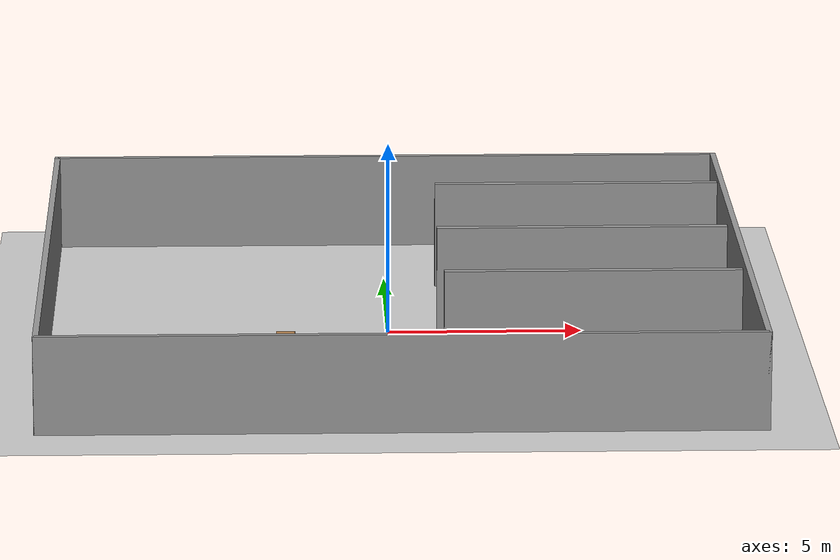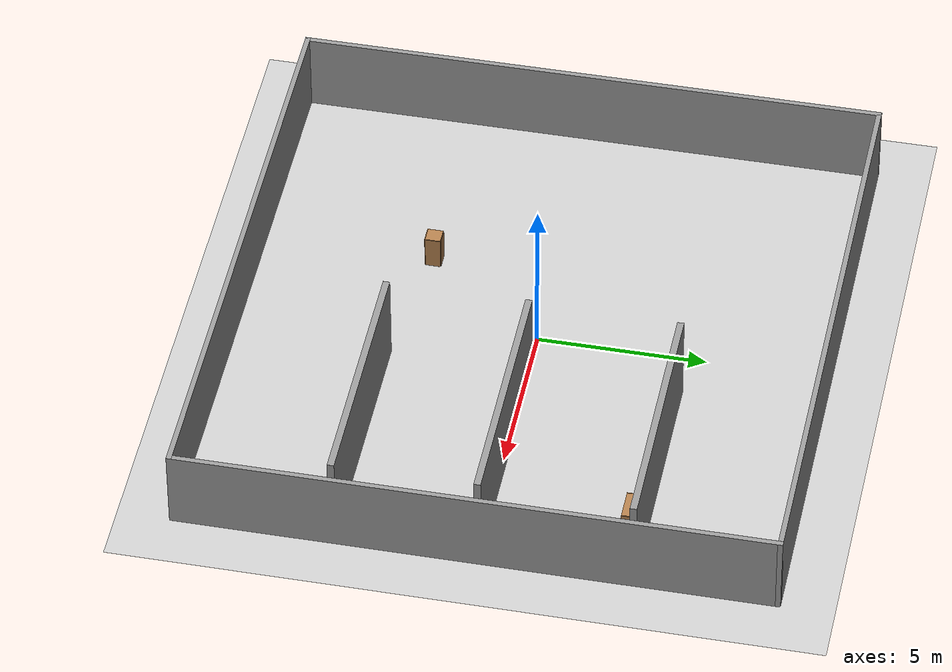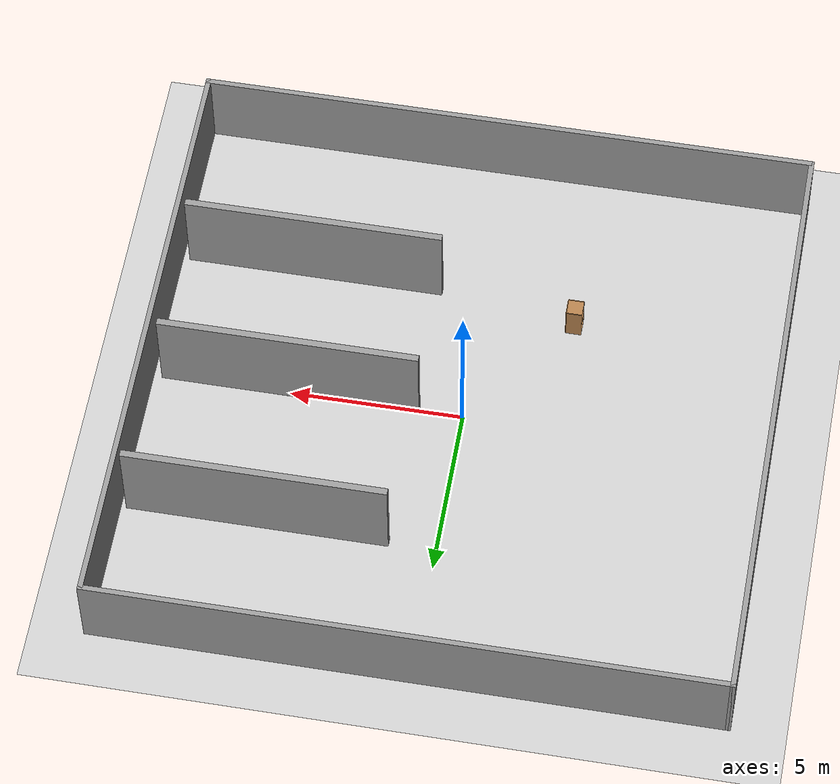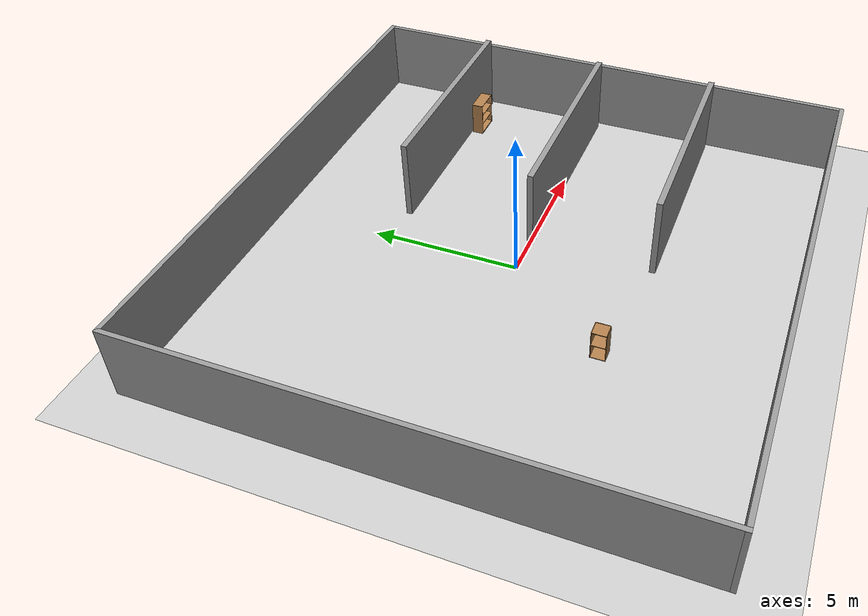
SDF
<sdf version="1.6">
 <world name="default">
  <light name="sun" type="directional">
   <pose>0 0 10 0 -0 0</pose>
   <diffuse>0.8 0.8 0.8 1</diffuse>
   <specular>0.2 0.2 0.2 1</specular>
   <attenuation>
    <range>1000</range>
    <constant>0.9</constant>
    <linear>0.01</linear>
    <quadratic>0.001</quadratic>
   </attenuation>
   <direction>-0.5 0.1 -0.9</direction>
  </light>
  <model name="ground_plane">
   <static>1</static>
   <link name="link">
    <collision name="collision">
     <geometry><plane><normal>0 0 1</normal><size>100 100</size></plane></geometry>
     <surface><friction><ode><mu>100</mu><mu2>50</mu2></ode></friction></surface>
    </collision>
    <visual name="visual">
     <cast_shadows>0</cast_shadows>
     <geometry><plane><normal>0 0 1</normal><size>100 100</size></plane></geometry>
     <material>
      <script><uri>file://media/materials/scripts/gazebo.material</uri><name>Gazebo/Grey</name></script>
     </material>
    </visual>
   </link>
  </model>
  <physics name="default_physics" default="0" type="ode">
   <max_step_size>0.01</max_step_size>
   <real_time_factor>1</real_time_factor>
   <real_time_update_rate>0</real_time_update_rate>
  </physics>
  <scene><ambient>0.4 0.4 0.4 1</ambient><background>0.7 0.7 0.7 1</background><shadows>1</shadows></scene>
  <audio><device>default</device></audio>
  <spherical_coordinates>
   <surface_model>EARTH_WGS84</surface_model>
   <latitude_deg>0</latitude_deg>
   <longitude_deg>0</longitude_deg>
   <elevation>0</elevation>
   <heading_deg>0</heading_deg>
  </spherical_coordinates>
  <model name="world-builder">
   <pose>0.14377 -0.070583 0 0 -0 0</pose>
   <link name="Wall_10">
    <collision name="Wall_10_Collision">
     <geometry><box><size>17.5 0.15 2.5</size></box></geometry>
     <pose>0 0 1.25 0 -0 0</pose>
    </collision>
    <visual name="Wall_10_Visual">
     <pose>0 0 1.25 0 -0 0</pose>
     <geometry><box><size>17.5 0.15 2.5</size></box></geometry>
     <material>
      <script><uri>file://media/materials/scripts/gazebo.material</uri><name>Gazebo/Grey</name></script>
      <ambient>1 1 1 1</ambient>
     </material>
     <meta><layer>0</layer></meta>
    </visual>
    <pose>8.925 0 0 0 -0 1.5708</pose>
   </link>
   <link name="Wall_2">
    <collision name="Wall_2_Collision">
     <geometry><box><size>17.5 0.15 2.5</size></box></geometry>
     <pose>0 0 1.25 0 -0 0</pose>
    </collision>
    <visual name="Wall_2_Visual">
     <pose>0 0 1.25 0 -0 0</pose>
     <geometry><box><size>17.5 0.15 2.5</size></box></geometry>
     <material>
      <script><uri>file://media/materials/scripts/gazebo.material</uri><name>Gazebo/Grey</name></script>
      <ambient>1 1 1 1</ambient>
     </material>
     <meta><layer>0</layer></meta>
    </visual>
    <pose>-8.925 0 0 0 -0 1.5708</pose>
   </link>
   <link name="Wall_3">
    <collision name="Wall_3_Collision">
     <geometry><box><size>18 0.15 2.5</size></box></geometry>
     <pose>0 0 1.25 0 -0 0</pose>
    </collision>
    <visual name="Wall_3_Visual">
     <pose>0 0 1.25 0 -0 0</pose>
     <geometry><box><size>18 0.15 2.5</size></box></geometry>
     <material>
      <script><uri>file://media/materials/scripts/gazebo.material</uri><name>Gazebo/Grey</name></script>
      <ambient>1 1 1 1</ambient>
     </material>
     <meta><layer>0</layer></meta>
    </visual>
    <pose>-0 8.675 0 0 -0 0</pose>
   </link>
   <link name="Wall_8">
    <collision name="Wall_8_Collision">
     <geometry><box><size>18 0.15 2.5</size></box></geometry>
     <pose>0 0 1.25 0 -0 0</pose>
    </collision>
    <visual name="Wall_8_Visual">
     <pose>0 0 1.25 0 -0 0</pose>
     <geometry><box><size>18 0.15 2.5</size></box></geometry>
     <material>
      <script><uri>file://media/materials/scripts/gazebo.material</uri><name>Gazebo/Grey</name></script>
      <ambient>1 1 1 1</ambient>
     </material>
     <meta><layer>0</layer></meta>
    </visual>
    <pose>-0 -8.675 0 0 -0 0</pose>
   </link>
   <static>1</static>
  </model>
  <gravity>0 0 -9.8</gravity>
  <magnetic_field>6e-06 2.3e-05 -4.2e-05</magnetic_field>
  <atmosphere type="adiabatic"/>
  <model name="grey_wall">
   <static>1</static>
   <link name="link">
    <pose>0 0 1.4 0 -0 0</pose>
    <collision name="collision"><geometry><box><size>7.5 0.2 2.8</size></box></geometry></collision>
    <visual name="visual">
     <cast_shadows>0</cast_shadows>
     <geometry><box><size>7.5 0.2 2.8</size></box></geometry>
     <material>
      <script>
       <uri>model://grey_wall/materials/scripts</uri>
       <uri>model://grey_wall/materials/textures</uri>
       <name>vrc/grey_wall</name>
      </script>
     </material>
    </visual>
   </link>
   <pose>5.09662 4.42858 0 0 -0 0</pose>
  </model>
  <model name="grey_wall_0">
   <static>1</static>
   <link name="link">
    <pose>0 0 1.4 0 -0 0</pose>
    <collision name="collision"><geometry><box><size>7.5 0.2 2.8</size></box></geometry></collision>
    <visual name="visual">
     <cast_shadows>0</cast_shadows>
     <geometry><box><size>7.5 0.2 2.8</size></box></geometry>
     <material>
      <script>
       <uri>model://grey_wall/materials/scripts</uri>
       <uri>model://grey_wall/materials/textures</uri>
       <name>vrc/grey_wall</name>
      </script>
     </material>
    </visual>
   </link>
   <pose>5.00675 -0.007086 0 0 -0 0</pose>
  </model>
  <model name="grey_wall_1">
   <static>1</static>
   <link name="link">
    <pose>0 0 1.4 0 -0 0</pose>
    <collision name="collision"><geometry><box><size>7.5 0.2 2.8</size></box></geometry></collision>
    <visual name="visual">
     <cast_shadows>0</cast_shadows>
     <geometry><box><size>7.5 0.2 2.8</size></box></geometry>
     <material>
      <script>
       <uri>model://grey_wall/materials/scripts</uri>
       <uri>model://grey_wall/materials/textures</uri>
       <name>vrc/grey_wall</name>
      </script>
     </material>
    </visual>
   </link>
   <pose>5.05761 -4.17103 0 0 -0 0</pose>
  </model>
  <model name="cabinet">
   <static>1</static>
   <link name="cabinet_bottom_plate">
    <inertial>
     <pose>0 0 -1 0 -0 0</pose>
     <inertia><ixx>2.05</ixx><ixy>0</ixy><ixz>0</ixz><iyy>2.05</iyy><iyz>0</iyz><izz>2.05</izz></inertia>
     <mass>25</mass>
    </inertial>
    <collision name="cabinet_bottom_plate_geom">
     <pose>0 0 0.01 0 -0 0</pose>
     <geometry><box><size>0.45 0.45 0.02</size></box></geometry>
    </collision>
    <visual name="cabinet_bottom_plate_geom_visual">
     <pose>0 0 0.01 0 -0 0</pose>
     <geometry><box><size>0.45 0.45 0.02</size></box></geometry>
     <material>
      <script><uri>file://media/materials/scripts/gazebo.material</uri><name>Gazebo/Wood</name></script>
     </material>
    </visual>
    <collision name="cabinet_bottom_plate_geom_cabinet_back_plate">
     <pose>0.235 0 0.51 0 -0 0</pose>
     <geometry><box><size>0.02 0.45 1.02</size></box></geometry>
    </collision>
    <visual name="cabinet_bottom_plate_geom_cabinet_back_plate_visual">
     <pose>0.235 0 0.51 0 -0 0</pose>
     <geometry><box><size>0.02 0.45 1.02</size></box></geometry>
     <material>
      <script><uri>file://media/materials/scripts/gazebo.material</uri><name>Gazebo/Wood</name></script>
     </material>
    </visual>
    <collision name="cabinet_bottom_plate_geom_cabinet_left_plate">
     <pose>0 0.235 0.51 0 -0 0</pose>
     <geometry><box><size>0.45 0.02 1.02</size></box></geometry>
    </collision>
    <visual name="cabinet_bottom_plate_geom_cabinet_left_plate_visual">
     <pose>0 0.235 0.51 0 -0 0</pose>
     <geometry><box><size>0.45 0.02 1.02</size></box></geometry>
     <material>
      <script><uri>file://media/materials/scripts/gazebo.material</uri><name>Gazebo/Wood</name></script>
     </material>
    </visual>
    <collision name="cabinet_bottom_plate_geom_cabinet_middle_plate">
     <pose>0 0 0.51 0 -0 0</pose>
     <geometry><box><size>0.45 0.45 0.02</size></box></geometry>
    </collision>
    <visual name="cabinet_bottom_plate_geom_cabinet_middle_plate_visual">
     <pose>0 0 0.51 0 -0 0</pose>
     <geometry><box><size>0.45 0.45 0.02</size></box></geometry>
     <material>
      <script><uri>file://media/materials/scripts/gazebo.material</uri><name>Gazebo/Wood</name></script>
     </material>
    </visual>
    <collision name="cabinet_bottom_plate_geom_cabinet_right_plate">
     <pose>0 -0.235 0.51 0 -0 0</pose>
     <geometry><box><size>0.45 0.02 1.02</size></box></geometry>
    </collision>
    <visual name="cabinet_bottom_plate_geom_cabinet_right_plate_visual">
     <pose>0 -0.235 0.51 0 -0 0</pose>
     <geometry><box><size>0.45 0.02 1.02</size></box></geometry>
     <material>
      <script><uri>file://media/materials/scripts/gazebo.material</uri><name>Gazebo/Wood</name></script>
     </material>
    </visual>
    <collision name="cabinet_bottom_plate_geom_cabinet_top_plate">
     <pose>0 0 1.01 0 -0 0</pose>
     <geometry><box><size>0.45 0.45 0.02</size></box></geometry>
    </collision>
    <visual name="cabinet_bottom_plate_geom_cabinet_top_plate_visual">
     <pose>0 0 1.01 0 -0 0</pose>
     <geometry><box><size>0.45 0.45 0.02</size></box></geometry>
     <material>
      <script><uri>file://media/materials/scripts/gazebo.material</uri><name>Gazebo/Wood</name></script>
     </material>
    </visual>
   </link>
   <pose>-2.67505 -3.6174 0 0 -0 0</pose>
  </model>
  <model name="bookshelf">
   <static>1</static>
   <link name="link">
    <inertial><mass>1</mass></inertial>
    <collision name="back">
     <pose>0 0.005 0.6 0 -0 0</pose>
     <geometry><box><size>0.9 0.01 1.2</size></box></geometry>
    </collision>
    <visual name="visual1">
     <pose>0 0.005 0.6 0 -0 0</pose>
     <geometry><box><size>0.9 0.01 1.2</size></box></geometry>
     <material>
      <script><uri>file://media/materials/scripts/gazebo.material</uri><name>Gazebo/Wood</name></script>
     </material>
    </visual>
    <collision name="left_side">
     <pose>0.45 -0.195 0.6 0 -0 0</pose>
     <geometry><box><size>0.02 0.4 1.2</size></box></geometry>
    </collision>
    <visual name="visual2">
     <pose>0.45 -0.195 0.6 0 -0 0</pose>
     <geometry><box><size>0.02 0.4 1.2</size></box></geometry>
     <material>
      <script><uri>file://media/materials/scripts/gazebo.material</uri><name>Gazebo/Wood</name></script>
     </material>
    </visual>
    <collision name="right_side">
     <pose>-0.45 -0.195 0.6 0 -0 0</pose>
     <geometry><box><size>0.02 0.4 1.2</size></box></geometry>
    </collision>
    <visual name="visual3">
     <pose>-0.45 -0.195 0.6 0 -0 0</pose>
     <geometry><box><size>0.02 0.4 1.2</size></box></geometry>
     <material>
      <script><uri>file://media/materials/scripts/gazebo.material</uri><name>Gazebo/Wood</name></script>
     </material>
    </visual>
    <collision name="bottom">
     <pose>0 -0.195 0.03 0 -0 0</pose>
     <geometry><box><size>0.88 0.4 0.06</size></box></geometry>
    </collision>
    <visual name="visual4">
     <pose>0 -0.195 0.03 0 -0 0</pose>
     <geometry><box><size>0.88 0.4 0.06</size></box></geometry>
     <material>
      <script><uri>file://media/materials/scripts/gazebo.material</uri><name>Gazebo/Wood</name></script>
     </material>
    </visual>
    <collision name="top">
     <pose>0 -0.195 1.19 0 -0 0</pose>
     <geometry><box><size>0.88 0.4 0.02</size></box></geometry>
    </collision>
    <visual name="visual5">
     <pose>0 -0.195 1.19 0 -0 0</pose>
     <geometry><box><size>0.88 0.4 0.02</size></box></geometry>
     <material>
      <script><uri>file://media/materials/scripts/gazebo.material</uri><name>Gazebo/Wood</name></script>
     </material>
    </visual>
    <collision name="low_shelf">
     <pose>0 -0.195 0.43 0 -0 0</pose>
     <geometry><box><size>0.88 0.4 0.02</size></box></geometry>
    </collision>
    <visual name="visual6">
     <pose>0 -0.195 0.43 0 -0 0</pose>
     <geometry><box><size>0.88 0.4 0.02</size></box></geometry>
     <material>
      <script><uri>file://media/materials/scripts/gazebo.material</uri><name>Gazebo/Wood</name></script>
     </material>
    </visual>
    <collision name="high_shelf">
     <pose>0 -0.195 0.8 0 -0 0</pose>
     <geometry><box><size>0.88 0.4 0.02</size></box></geometry>
    </collision>
    <visual name="visual7">
     <pose>0 -0.195 0.8 0 -0 0</pose>
     <geometry><box><size>0.88 0.4 0.02</size></box></geometry>
     <material>
      <script><uri>file://media/materials/scripts/gazebo.material</uri><name>Gazebo/Wood</name></script>
     </material>
    </visual>
   </link>
   <pose>7.19551 4.27538 0 0 -0 0</pose>
  </model>
 </world>
</sdf>
